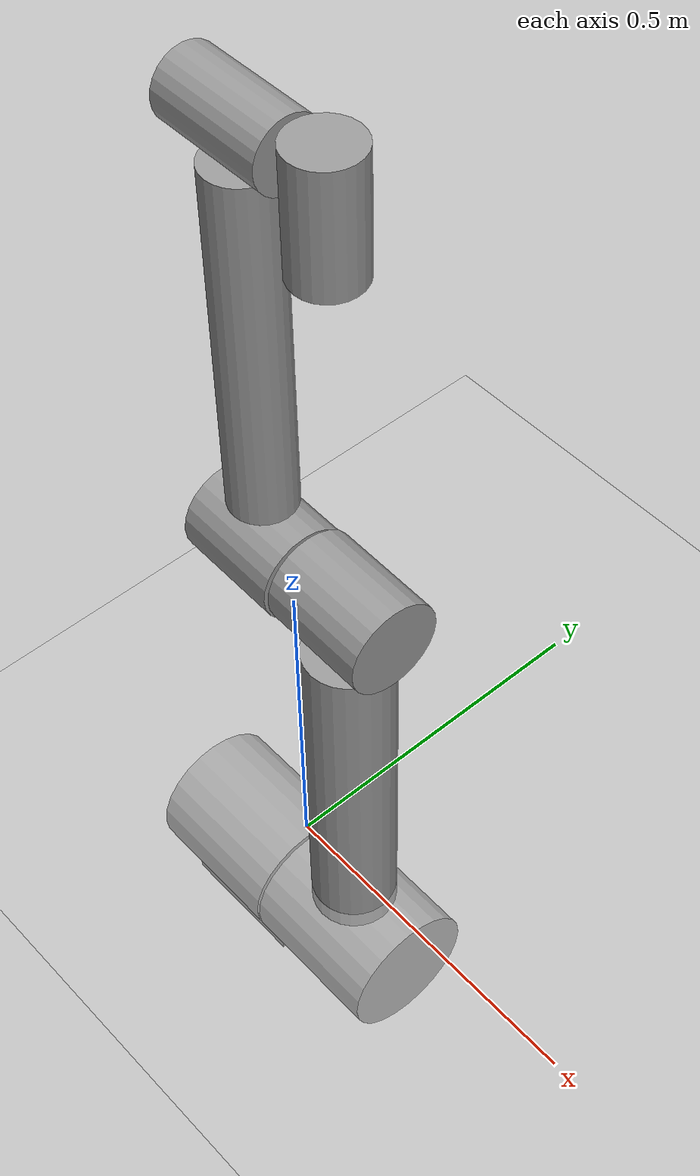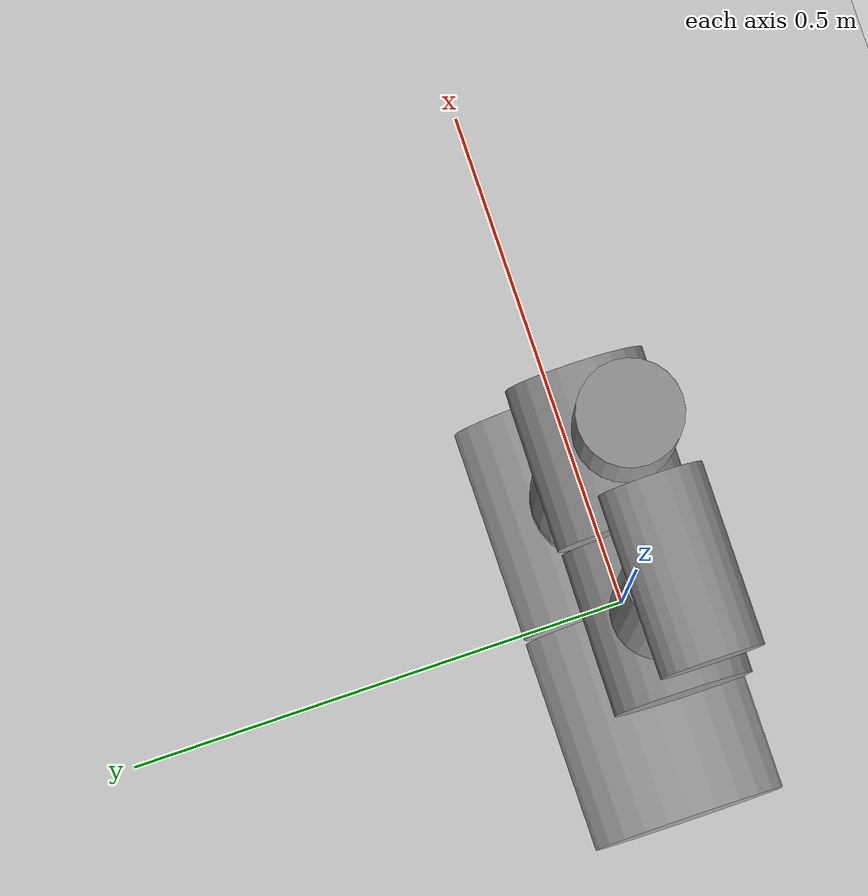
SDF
<?xml version="1.0" ?>
<sdf version="1.6">
  <world name="default">

	<!-- A global light source -->
	<include>
	  <uri>model://sun</uri>
	</include>

	<!-- A ground plane -->
	<include>
	  <uri>model://ground_plane</uri>
	</include>

  <model name='myownArm'>
<!-- LINK ELEMENTE-->

<!-- Bodenplatte -->
    <link name='Bodenplatte'>
      <pose frame=''>-0.110501 -0 -0.267273 0 -0 0</pose>
      <inertial>
        <mass>10000</mass>
        <inertia>
          <ixx>836.333</ixx>
          <ixy>0</ixy>
          <ixz>0</ixz>
          <iyy>836.333</iyy>
          <iyz>0</iyz>
          <izz>1666.67</izz>
        </inertia>
        <pose frame=''>0 0 0 0 -0 0</pose>
      </inertial>
      <self_collide>0</self_collide>
      <kinematic>0</kinematic>
      <enable_wind>0</enable_wind>
      <gravity>1</gravity>
      <visual name='visual'>
        <pose frame=''>0 0 0 0 -0 0</pose>
        <geometry>
          <box>
            <size>0.2 0.1 0.055</size>
          </box>
        </geometry>
        <material>
          <lighting>1</lighting>
          <script>
            <uri>file://media/materials/scripts/gazebo.material</uri>
            <name>Gazebo/Grey</name>
          </script>
          <shader type='vertex'>
            <normal_map>__default__</normal_map>
          </shader>
          <ambient>0.3 0.3 0.3 1</ambient>
          <diffuse>0.7 0.7 0.7 1</diffuse>
          <specular>0.01 0.01 0.01 1</specular>
          <emissive>0 0 0 1</emissive>
        </material>
        <transparency>0</transparency>
        <cast_shadows>1</cast_shadows>
      </visual>
      <collision name='collision'>
        <laser_retro>0</laser_retro>
        <max_contacts>10</max_contacts>
        <pose frame=''>0 0 0 0 -0 0</pose>
        <geometry>
          <box>
            <size>0.2 0.1 0.055</size>
          </box>
        </geometry>
        <surface>
          <friction>
            <ode>
              <mu>1</mu>
              <mu2>1</mu2>
              <fdir1>0 0 0</fdir1>
              <slip1>0</slip1>
              <slip2>0</slip2>
            </ode>
            <torsional>
              <coefficient>1</coefficient>
              <patch_radius>0</patch_radius>
              <surface_radius>0</surface_radius>
              <use_patch_radius>1</use_patch_radius>
              <ode>
                <slip>0</slip>
              </ode>
            </torsional>
          </friction>
        </surface>
      </collision>
    </link>
<!-- 1. Teil des Großen Gelenks -->
    <link name='GrossesGelenk1'>
      <pose frame=''>-0.110501 -0 -0.129742 3.13788 1.57079 3.13788</pose>
      <inertial>
        <mass>13</mass>
        <inertia>
          <ixx>1.89583</ixx>
          <ixy>0</ixy>
          <ixz>0</ixz>
          <iyy>1.89583</iyy>
          <iyz>0</iyz>
          <izz>1.625</izz>
        </inertia>
        <pose frame=''>0 0 0 0 -0 0</pose>
      </inertial>
      <self_collide>0</self_collide>
      <kinematic>0</kinematic>
      <enable_wind>0</enable_wind>
      <visual name='visual'>
        <pose frame=''>0 0 0 0 -0 0</pose>
        <geometry>
          <cylinder>
            <radius>0.0975</radius>
            <length>0.215</length>
          </cylinder>
        </geometry>
        <material>
          <lighting>1</lighting>
          <script>
            <uri>file://media/materials/scripts/gazebo.material</uri>
            <name>Gazebo/Grey</name>
          </script>
          <shader type='vertex'>
            <normal_map>__default__</normal_map>
          </shader>
          <ambient>0.3 0.3 0.3 1</ambient>
          <diffuse>0.7 0.7 0.7 1</diffuse>
          <specular>0.01 0.01 0.01 1</specular>
          <emissive>0 0 0 1</emissive>
        </material>
        <transparency>0</transparency>
        <cast_shadows>1</cast_shadows>
      </visual>
      <collision name='collision'>
        <laser_retro>0</laser_retro>
        <max_contacts>10</max_contacts>
        <pose frame=''>0 0 0 0 -0 0</pose>
        <geometry>
          <cylinder>
            <radius>0.0975</radius>
            <length>0.215</length>
          </cylinder>
        </geometry>
        <surface>
          <friction>
            <ode>
              <mu>1</mu>
              <mu2>1</mu2>
              <fdir1>0 0 0</fdir1>
              <slip1>0</slip1>
              <slip2>0</slip2>
            </ode>
            <torsional>
              <coefficient>1</coefficient>
              <patch_radius>0</patch_radius>
              <surface_radius>0</surface_radius>
              <use_patch_radius>1</use_patch_radius>
              <ode>
                <slip>0</slip>
              </ode>
            </torsional>
          </friction>
        </surface>
      </collision>
    </link>
<!-- 2. Teil des großen Gelenks-->
    <link name='GrossesGelenk2'>
      <pose frame=''>0.108856 -0 -0.129742 3.13347 1.57079 3.13347</pose>
      <inertial>
        <mass>13</mass>
        <inertia>
          <ixx>1.89583</ixx>
          <ixy>0</ixy>
          <ixz>0</ixz>
          <iyy>1.89583</iyy>
          <iyz>0</iyz>
          <izz>1.625</izz>
        </inertia>
        <pose frame=''>0 0 0 0 -0 0</pose>
      </inertial>
      <self_collide>0</self_collide>
      <kinematic>0</kinematic>
      <enable_wind>0</enable_wind>
      <visual name='visual'>
        <pose frame=''>0 0 0 0 -0 0</pose>
        <geometry>
          <cylinder>
            <radius>0.0975</radius>
            <length>0.215</length>
          </cylinder>
        </geometry>
        <material>
          <lighting>1</lighting>
          <script>
            <uri>file://media/materials/scripts/gazebo.material</uri>
            <name>Gazebo/Grey</name>
          </script>
          <shader type='vertex'>
            <normal_map>__default__</normal_map>
          </shader>
          <ambient>0.3 0.3 0.3 1</ambient>
          <diffuse>0.7 0.7 0.7 1</diffuse>
          <specular>0.01 0.01 0.01 1</specular>
          <emissive>0 0 0 1</emissive>
        </material>
        <transparency>0</transparency>
        <cast_shadows>1</cast_shadows>
      </visual>
      <collision name='collision'>
        <laser_retro>0</laser_retro>
        <max_contacts>10</max_contacts>
        <pose frame=''>0 0 0 0 -0 0</pose>
        <geometry>
          <cylinder>
            <radius>0.0975</radius>
            <length>0.215</length>
          </cylinder>
        </geometry>
        <surface>
          <friction>
            <ode>
              <mu>1</mu>
              <mu2>1</mu2>
              <fdir1>0 0 0</fdir1>
              <slip1>0</slip1>
              <slip2>0</slip2>
            </ode>
            <torsional>
              <coefficient>1</coefficient>
              <patch_radius>0</patch_radius>
              <surface_radius>0</surface_radius>
              <use_patch_radius>1</use_patch_radius>
              <ode>
                <slip>0</slip>
              </ode>
            </torsional>
          </friction>

        </surface>
      </collision>
    </link>
<!-- 1. Teil des kleinen Gelenks -->
    <link name='KleinesGelenk1'>
      <pose frame=''>-0.047148 -0.00074 1.18762 0 1.5707 0</pose>
      <inertial>
        <mass>2.754</mass>
        <inertia>
          <ixx>0.145833</ixx>
          <ixy>0</ixy>
          <ixz>0</ixz>
          <iyy>0.145833</iyy>
          <iyz>0</iyz>
          <izz>0.125</izz>
        </inertia>
        <pose frame=''>0 0 0 0 -0 0</pose>
      </inertial>
      <gravity>1</gravity>
      <self_collide>0</self_collide>
      <kinematic>0</kinematic>
      <enable_wind>0</enable_wind>
      <visual name='visual'>
        <pose frame=''>0 0 0 0 -0 0</pose>
        <geometry>
          <cylinder>
            <radius>0.045</radius>
            <length>0.158</length>
          </cylinder>
        </geometry>
        <material>
          <lighting>1</lighting>
          <script>
            <uri>file://media/materials/scripts/gazebo.material</uri>
            <name>Gazebo/Grey</name>
          </script>
          <ambient>0.3 0.3 0.3 1</ambient>
          <diffuse>0.7 0.7 0.7 1</diffuse>
          <specular>0.01 0.01 0.01 1</specular>
          <emissive>0 0 0 1</emissive>
          <shader type='vertex'>
            <normal_map>__default__</normal_map>
          </shader>
        </material>
        <cast_shadows>1</cast_shadows>
        <transparency>0</transparency>
      </visual>
      <collision name='collision'>
        <laser_retro>0</laser_retro>
        <max_contacts>10</max_contacts>
        <pose frame=''>0 0 0 0 -0 0</pose>
        <geometry>
          <cylinder>
            <radius>0.045</radius>
            <length>0.158</length>
          </cylinder>
        </geometry>
        <surface>
          <friction>
            <ode>
              <mu>1</mu>
              <mu2>1</mu2>
              <fdir1>0 0 0</fdir1>
              <slip1>0</slip1>
              <slip2>0</slip2>
            </ode>
            <torsional>
              <coefficient>1</coefficient>
              <patch_radius>0</patch_radius>
              <surface_radius>0</surface_radius>
              <use_patch_radius>1</use_patch_radius>
              <ode>
                <slip>0</slip>
              </ode>
            </torsional>
          </friction>

        </surface>
      </collision>
    </link>
<!-- 2. Teil des kleinen Gelenks -->
    <link name='KleinesGelenk2'>
      <pose frame=''>0.085 -0.00074 1.15363 0 -0 0</pose>
      <inertial>
        <mass>2.754</mass>
        <inertia>
          <ixx>0.145833</ixx>
          <ixy>0</ixy>
          <ixz>0</ixz>
          <iyy>0.145833</iyy>
          <iyz>0</iyz>
          <izz>0.125</izz>
        </inertia>
        <pose frame=''>0 0 0 0 -0 0</pose>
      </inertial>
      <self_collide>0</self_collide>
      <kinematic>0</kinematic>
      <gravity>1</gravity>
      <enable_wind>0</enable_wind>
      <visual name='visual'>
        <pose frame=''>0 0 0 0 -0 0</pose>
        <geometry>
          <cylinder>
            <radius>0.045</radius>
            <length>0.158</length>
          </cylinder>
        </geometry>
        <material>
          <lighting>1</lighting>
          <script>
            <uri>file://media/materials/scripts/gazebo.material</uri>
            <name>Gazebo/Grey</name>
          </script>
          <ambient>0.3 0.3 0.3 1</ambient>
          <diffuse>0.7 0.7 0.7 1</diffuse>
          <specular>0.01 0.01 0.01 1</specular>
          <emissive>0 0 0 1</emissive>
          <shader type='vertex'>
            <normal_map>__default__</normal_map>
          </shader>
        </material>
        <cast_shadows>1</cast_shadows>
        <transparency>0</transparency>
      </visual>
      <collision name='collision'>
        <laser_retro>0</laser_retro>
        <max_contacts>10</max_contacts>
        <pose frame=''>0 0 0 0 -0 0</pose>
        <geometry>
          <cylinder>
            <radius>0.045</radius>
            <length>0.158</length>
          </cylinder>
        </geometry>
        <surface>
          <friction>
            <ode>
              <mu>1</mu>
              <mu2>1</mu2>
              <fdir1>0 0 0</fdir1>
              <slip1>0</slip1>
              <slip2>0</slip2>
            </ode>
            <torsional>
              <coefficient>1</coefficient>
              <patch_radius>0</patch_radius>
              <surface_radius>0</surface_radius>
              <use_patch_radius>1</use_patch_radius>
              <ode>
                <slip>0</slip>
              </ode>
            </torsional>
          </friction>

        </surface>
      </collision>
    </link>
<!-- 1. Teil des Mittleren Gelenks -->
    <link name='MittleresGelenk1'>
      <pose frame=''>-0.047148 -0.00074 0.576617 3.01682 1.56535 3.00517</pose>
      <inertial>
        <mass>5.27</mass>
        <inertia>
          <ixx>1.89583</ixx>
          <ixy>0</ixy>
          <ixz>0</ixz>
          <iyy>1.89583</iyy>
          <iyz>0</iyz>
          <izz>1.625</izz>
        </inertia>
        <pose frame=''>0 0 0 0 -0 0</pose>
      </inertial>
      <self_collide>0</self_collide>
      <kinematic>0</kinematic>
      <enable_wind>0</enable_wind>
      <visual name='visual'>
        <pose frame=''>0 0 0 0 -0 0</pose>
        <geometry>
          <cylinder>
            <radius>0.065</radius>
            <length>0.152</length>
          </cylinder>
        </geometry>
        <material>
          <lighting>1</lighting>
          <script>
            <uri>file://media/materials/scripts/gazebo.material</uri>
            <name>Gazebo/Grey</name>
          </script>
          <shader type='vertex'>
            <normal_map>__default__</normal_map>
          </shader>
          <ambient>0.3 0.3 0.3 1</ambient>
          <diffuse>0.7 0.7 0.7 1</diffuse>
          <specular>0.01 0.01 0.01 1</specular>
          <emissive>0 0 0 1</emissive>
        </material>
        <transparency>0</transparency>
        <cast_shadows>1</cast_shadows>
      </visual>
      <collision name='collision'>
        <laser_retro>0</laser_retro>
        <max_contacts>10</max_contacts>
        <pose frame=''>0 0 0 0 -0 0</pose>
        <geometry>
          <cylinder>
            <radius>0.065</radius>
            <length>0.152</length>
          </cylinder>
        </geometry>
        <surface>
          <friction>
            <ode>
              <mu>1</mu>
              <mu2>1</mu2>
              <fdir1>0 0 0</fdir1>
              <slip1>0</slip1>
              <slip2>0</slip2>
            </ode>
            <torsional>
              <coefficient>1</coefficient>
              <patch_radius>0</patch_radius>
              <surface_radius>0</surface_radius>
              <use_patch_radius>1</use_patch_radius>
              <ode>
                <slip>0</slip>
              </ode>
            </torsional>
          </friction>

        </surface>
      </collision>
    </link>
<!-- 2. Teil des mittleren Gelenks -->
    <link name='MittleresGelenk2'>
      <pose frame=''>0.109117 -3.6e-05 0.576944 3.01682 1.56535 3.00517</pose>
      <inertial>
        <mass>5.27</mass>
        <inertia>
          <ixx>1.89583</ixx>
          <ixy>0</ixy>
          <ixz>0</ixz>
          <iyy>1.89583</iyy>
          <iyz>0</iyz>
          <izz>1.625</izz>
        </inertia>
        <pose frame=''>0 0 0 0 -0 0</pose>
      </inertial>
      <self_collide>0</self_collide>
      <kinematic>0</kinematic>
      <enable_wind>0</enable_wind>
      <visual name='visual'>
        <pose frame=''>0 0 0 0 -0 0</pose>
        <geometry>
          <cylinder>
            <radius>0.065</radius>
            <length>0.152</length>
          </cylinder>
        </geometry>
        <material>
          <lighting>1</lighting>
          <script>
            <uri>file://media/materials/scripts/gazebo.material</uri>
            <name>Gazebo/Grey</name>
          </script>
          <shader type='vertex'>
            <normal_map>__default__</normal_map>
          </shader>
          <ambient>0.3 0.3 0.3 1</ambient>
          <diffuse>0.7 0.7 0.7 1</diffuse>
          <specular>0.01 0.01 0.01 1</specular>
          <emissive>0 0 0 1</emissive>
        </material>
        <transparency>0</transparency>
        <cast_shadows>1</cast_shadows>
      </visual>
      <collision name='collision'>
        <laser_retro>0</laser_retro>
        <max_contacts>10</max_contacts>
        <pose frame=''>0 0 0 0 -0 0</pose>
        <geometry>
          <cylinder>
            <radius>0.065</radius>
            <length>0.152</length>
          </cylinder>
        </geometry>
        <surface>
          <friction>
            <ode>
              <mu>1</mu>
              <mu2>1</mu2>
              <fdir1>0 0 0</fdir1>
              <slip1>0</slip1>
              <slip2>0</slip2>
            </ode>
            <torsional>
              <coefficient>1</coefficient>
              <patch_radius>0</patch_radius>
              <surface_radius>0</surface_radius>
              <use_patch_radius>1</use_patch_radius>
              <ode>
                <slip>0</slip>
              </ode>
            </torsional>
          </friction>

        </surface>
      </collision>
    </link>
<!-- Das Verbindungsstück von Mittlerem und kleinem Gelenk -->
    <link name='Oberschwinge'>
      <pose frame=''>-0.047148 -0.00074 0.892871 0 -0 0</pose>
      <inertial>
        <mass>1.62</mass>
        <inertia>
          <ixx>0.0329037</ixx>
          <ixy>0</ixy>
          <ixz>0</ixz>
          <iyy>0.0329037</iyy>
          <iyz>0</iyz>
          <izz>0.00164025</izz>
        </inertia>
        <pose frame=''>0 0 0 0 -0 0</pose>
      </inertial>
      <self_collide>0</self_collide>
      <kinematic>0</kinematic>
      <enable_wind>0</enable_wind>
      <visual name='visual'>
        <pose frame=''>0 0 0 0 -0 0</pose>
        <geometry>
          <cylinder>
            <radius>0.045</radius>
            <length>0.4875</length>
          </cylinder>
        </geometry>
        <material>
          <lighting>1</lighting>
          <script>
            <uri>file://media/materials/scripts/gazebo.material</uri>
            <name>Gazebo/Grey</name>
          </script>
          <shader type='vertex'>
            <normal_map>__default__</normal_map>
          </shader>
          <ambient>0.3 0.3 0.3 1</ambient>
          <diffuse>0.7 0.7 0.7 1</diffuse>
          <specular>0.01 0.01 0.01 1</specular>
          <emissive>0 0 0 1</emissive>
        </material>
        <transparency>0</transparency>
        <cast_shadows>1</cast_shadows>
      </visual>
      <collision name='collision'>
        <laser_retro>0</laser_retro>
        <max_contacts>10</max_contacts>
        <pose frame=''>0 0 0 0 -0 0</pose>
        <geometry>
          <cylinder>
            <radius>0.045</radius>
            <length>0.4875</length>
          </cylinder>
        </geometry>
        <surface>
          <friction>
            <ode>
              <mu>1</mu>
              <mu2>1</mu2>
              <fdir1>0 0 0</fdir1>
              <slip1>0</slip1>
              <slip2>0</slip2>
            </ode>
            <torsional>
              <coefficient>1</coefficient>
              <patch_radius>0</patch_radius>
              <surface_radius>0</surface_radius>
              <use_patch_radius>1</use_patch_radius>
              <ode>
                <slip>0</slip>
              </ode>
            </torsional>
          </friction>

        </surface>
      </collision>
    </link>
<!-- Das Verbindungsstück von Großem und Mittlerem Gelenk -->
    <link name='Unterschwinge'>
      <pose frame=''>0.108856 -0.005839 0.239161 0 -0 0</pose>
      <inertial>
        <mass>3.395</mass>
        <inertia>
          <ixx>0.495104</ixx>
          <ixy>0</ixy>
          <ixz>0</ixz>
          <iyy>0.495104</iyy>
          <iyz>0</iyz>
          <izz>0.424375</izz>
        </inertia>
        <pose frame=''>0 0 0 0 -0 0</pose>
      </inertial>
      <self_collide>0</self_collide>
      <kinematic>0</kinematic>
      <enable_wind>0</enable_wind>
      <visual name='visual'>
        <pose frame=''>0 0 0 0 -0 0</pose>
        <geometry>
          <cylinder>
            <radius>0.06</radius>
            <length>0.542</length>
          </cylinder>
        </geometry>
        <material>
          <lighting>1</lighting>
          <script>
            <uri>file://media/materials/scripts/gazebo.material</uri>
            <name>Gazebo/Grey</name>
          </script>
          <shader type='vertex'>
            <normal_map>__default__</normal_map>
          </shader>
          <ambient>0.3 0.3 0.3 1</ambient>
          <diffuse>0.7 0.7 0.7 1</diffuse>
          <specular>0.01 0.01 0.01 1</specular>
          <emissive>0 0 0 1</emissive>
        </material>
        <transparency>0</transparency>
        <cast_shadows>1</cast_shadows>
      </visual>
      <collision name='collision'>
        <laser_retro>0</laser_retro>
        <max_contacts>10</max_contacts>
        <pose frame=''>0 0 0 0 -0 0</pose>
        <geometry>
          <cylinder>
            <radius>0.06</radius>
            <length>0.542</length>
          </cylinder>
        </geometry>
        <surface>
          <friction>
            <ode>
              <mu>1</mu>
              <mu2>1</mu2>
              <fdir1>0 0 0</fdir1>
              <slip1>0</slip1>
              <slip2>0</slip2>
            </ode>
            <torsional>
              <coefficient>1</coefficient>
              <patch_radius>0</patch_radius>
              <surface_radius>0</surface_radius>
              <use_patch_radius>1</use_patch_radius>
              <ode>
                <slip>0</slip>
              </ode>
            </torsional>
          </friction>

        </surface>
      </collision>
    </link>

<!-- JOINT ELEMENTE-->

<!-- (horizontal) rotierende Verbindung von grossem Gelenk und Bodenplatte -->
    <joint name='Gross_Bodenplatte' type='revolute'>
      <parent>Bodenplatte</parent>
      <child>GrossesGelenk1</child>
      <pose frame=''>0 0 0 3.14159 -1.57079 3.14159</pose>
      <axis>
        <xyz>0 0 1</xyz>
        <use_parent_model_frame>0</use_parent_model_frame>
        <limit>
          <lower>-1.79769e+308</lower>
          <upper>1.79769e+308</upper>
          <effort>-1</effort>
          <velocity>-1</velocity>
        </limit>
        <dynamics>
          <spring_reference>0</spring_reference>
          <spring_stiffness>0</spring_stiffness>
          <damping>150</damping>
          <friction>50</friction>
        </dynamics>
      </axis>
      <physics>
        <ode>
          <limit>
            <cfm>0</cfm>
            <erp>0.2</erp>
          </limit>
          <suspension>
            <cfm>0</cfm>
            <erp>0.2</erp>
          </suspension>
        </ode>
      </physics>
    </joint>
<!-- feste Verbindung von grossem Gelenk und Unterschwinge-->
    <joint name='Gross_Unterschwinge' type='fixed'>
      <parent>GrossesGelenk2</parent>
      <child>Unterschwinge</child>
      <pose frame=''>0 0 0 0 -0 0</pose>
      <physics>
        <ode>
          <limit>
            <cfm>0</cfm>
            <erp>0.2</erp>
          </limit>
          <suspension>
            <cfm>0</cfm>
            <erp>0.2</erp>
          </suspension>
        </ode>
      </physics>
    </joint>
<!-- (Vertikal) rotierende Verbindung innerhalb des grossen Gelenks -->
    <joint name='GrossesGelenkLink' type='revolute'>
      <parent>GrossesGelenk1</parent>
      <child>GrossesGelenk2</child>
      <pose frame=''>0 0 0 3.14159 -1.57079 3.14159</pose>
      <axis>
        <xyz>1 0 0</xyz>
        <use_parent_model_frame>0</use_parent_model_frame>
        <limit>
          <lower>-1.79769e+308</lower>
          <upper>1.79769e+308</upper>
          <effort>-1</effort>
          <velocity>-1</velocity>
        </limit>
        <dynamics>
          <spring_reference>0</spring_reference>
          <spring_stiffness>0</spring_stiffness>
          <damping>150</damping>
          <friction>100</friction>
        </dynamics>
      </axis>
      <physics>
        <ode>
          <limit>
            <cfm>0</cfm>
            <erp>0.2</erp>
          </limit>
          <suspension>
            <cfm>0</cfm>
            <erp>0.2</erp>
          </suspension>
        </ode>
      </physics>
    </joint>
<!-- (Vertikal) rotierende Verbindung innerhalb des kleinen Gelenks -->
    <joint name='KleinesGelenkLink' type='revolute'>
      <parent>KleinesGelenk1</parent>
      <child>KleinesGelenk2</child>
      <pose frame=''>-0.048 0 0.03 0 -0 0</pose>
      <axis>
        <xyz>1 0 0</xyz>
        <use_parent_model_frame>0</use_parent_model_frame>
        <limit>
          <lower>-1.79769e+308</lower>
          <upper>1.79769e+308</upper>
          <effort>-1</effort>
          <velocity>-1</velocity>
        </limit>
        <dynamics>
          <spring_reference>0</spring_reference>
          <spring_stiffness>0</spring_stiffness>
          <damping>40</damping>
          <friction>10</friction>
        </dynamics>
      </axis>
      <physics>
        <ode>
          <limit>
            <cfm>0</cfm>
            <erp>0.2</erp>
          </limit>
          <suspension>
            <cfm>0</cfm>
            <erp>0.2</erp>
          </suspension>
        </ode>
      </physics>
    </joint>
<!-- (horizontal) rotierende Verbindung zwischen mittlerem Gelenk und Oberschwinge -->
    <joint name='Mittel_Oberschwinge' type='revolute'>
      <parent>MittleresGelenk1</parent>
      <child>Oberschwinge</child>
      <pose frame=''>0 0 0 0 -0 0</pose>
      <axis>
        <xyz>0 0 1</xyz>
        <use_parent_model_frame>0</use_parent_model_frame>
        <limit>
          <lower>-1.79769e+308</lower>
          <upper>1.79769e+308</upper>
          <effort>-1</effort>
          <velocity>-1</velocity>
        </limit>
        <dynamics>
          <spring_reference>0</spring_reference>
          <spring_stiffness>0</spring_stiffness>
          <damping>100</damping>
          <friction>40</friction>
        </dynamics>
      </axis>
      <physics>
        <ode>
          <limit>
            <cfm>0</cfm>
            <erp>0.2</erp>
          </limit>
          <suspension>
            <cfm>0</cfm>
            <erp>0.2</erp>
          </suspension>
        </ode>
      </physics>
    </joint>
<!-- (Vertikal) rotierende Verbindung innerhalb des mittleren Gelenks -->
    <joint name='MittleresGelenkLink' type='revolute'>
      <parent>MittleresGelenk1</parent>
      <child>MittleresGelenk2</child>
      <pose frame=''>0 0 0 3.14159 -1.57079 3.14159</pose>
      <axis>
        <xyz>1 0 0</xyz>
        <use_parent_model_frame>0</use_parent_model_frame>
        <limit>
          <lower>-1.79769e+308</lower>
          <upper>1.79769e+308</upper>
          <effort>-1</effort>
          <velocity>-1</velocity>
        </limit>
        <dynamics>
          <spring_reference>0</spring_reference>
          <spring_stiffness>0</spring_stiffness>
          <damping>180</damping>
          <friction>70</friction>
        </dynamics>
      </axis>
      <physics>
        <ode>
          <limit>
            <cfm>0</cfm>
            <erp>0.2</erp>
          </limit>
          <suspension>
            <cfm>0</cfm>
            <erp>0.2</erp>
          </suspension>
        </ode>
      </physics>
    </joint>
<!-- feste Verbindung von Oberschwinge mit kleinem Gelenk -->
    <joint name='Oberschwinge_KleinesGelenk' type='fixed'>
      <parent>Oberschwinge</parent>
      <child>KleinesGelenk1</child>
      <pose frame=''>0 0 0 0 -0 0</pose>
      <physics>
        <ode>
          <limit>
            <cfm>0</cfm>
            <erp>0.2</erp>
          </limit>
          <suspension>
            <cfm>0</cfm>
            <erp>0.2</erp>
          </suspension>
        </ode>
      </physics>
    </joint>
<!-- feste Verbindung von Unterschwinge mit mittlerem Gelenk -->
    <joint name='Unterschwinge_Mittel' type='fixed'>
      <parent>Unterschwinge</parent>
      <child>MittleresGelenk2</child>
      <pose frame=''>0 0 0 0 -0 0</pose>
      <physics>
        <ode>
          <limit>
            <cfm>0</cfm>
            <erp>0.2</erp>
          </limit>
          <suspension>
            <cfm>0</cfm>
            <erp>0.2</erp>
          </suspension>
        </ode>
      </physics>
    </joint>

    <static>0</static>
    <allow_auto_disable>1</allow_auto_disable>

<!-- Einbinden des Plugins zur Kontrolle des Arms -->
    <plugin name='arm_control' filename='libmyarm_plugin.so'/>
  </model>
  </world>
</sdf>
